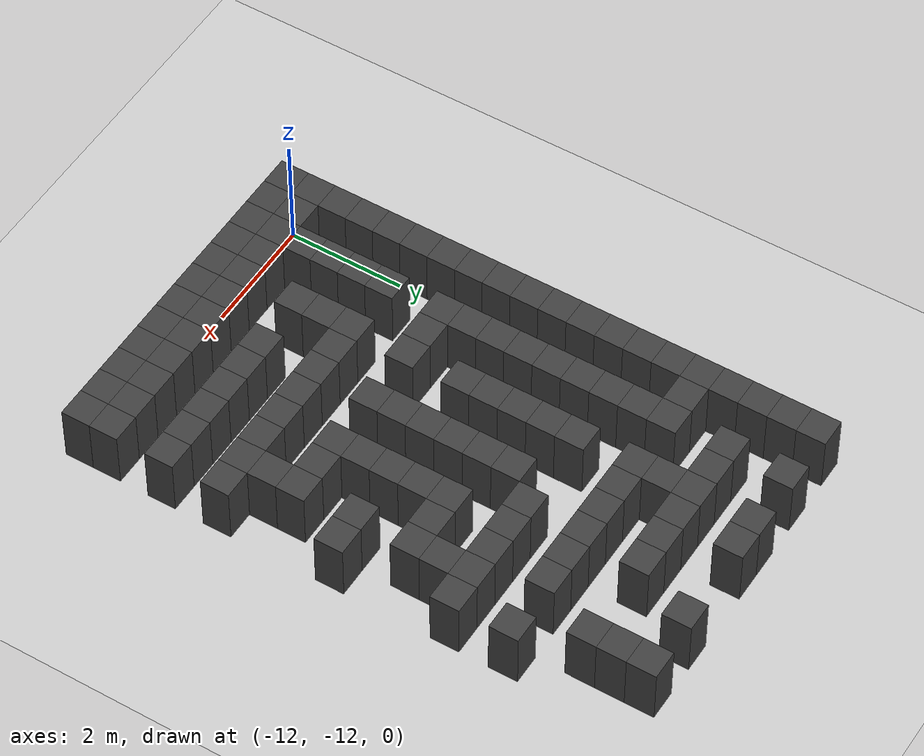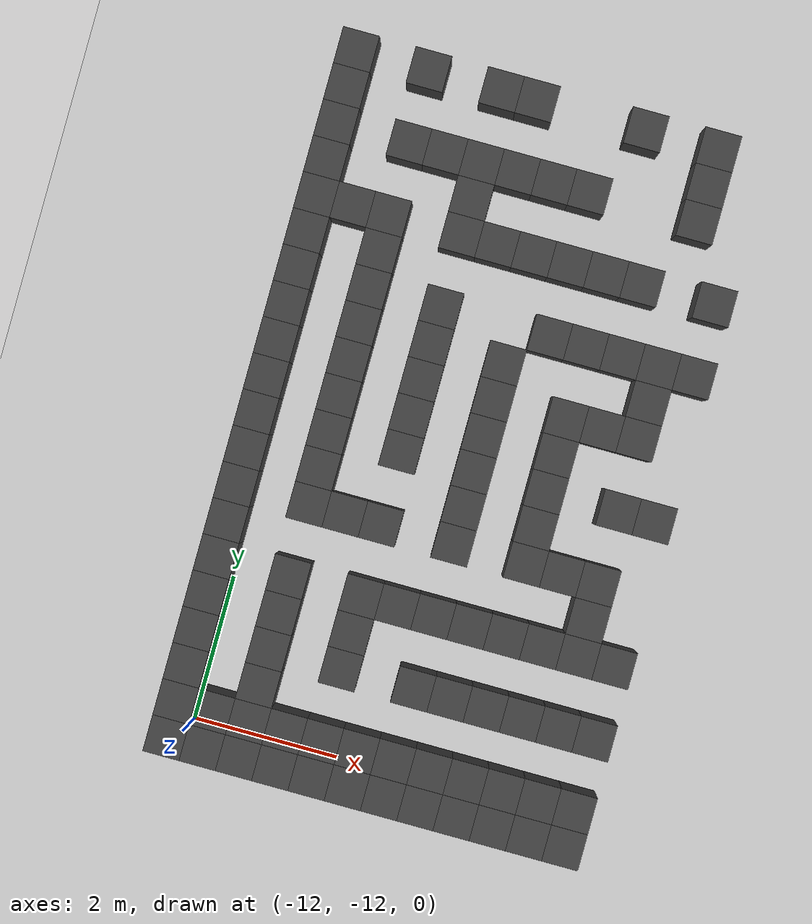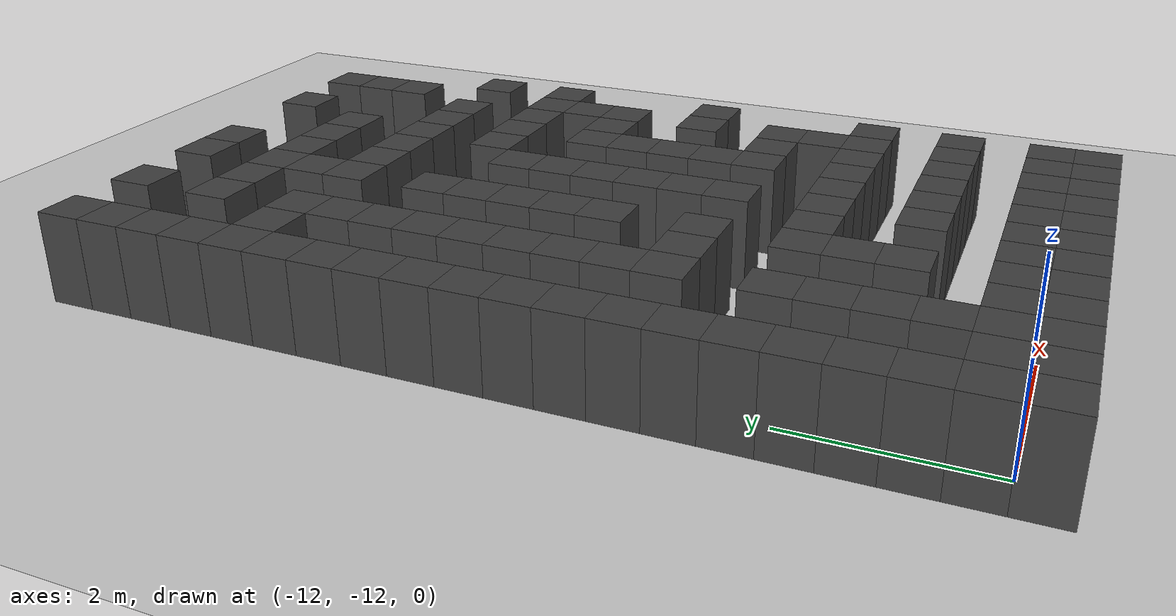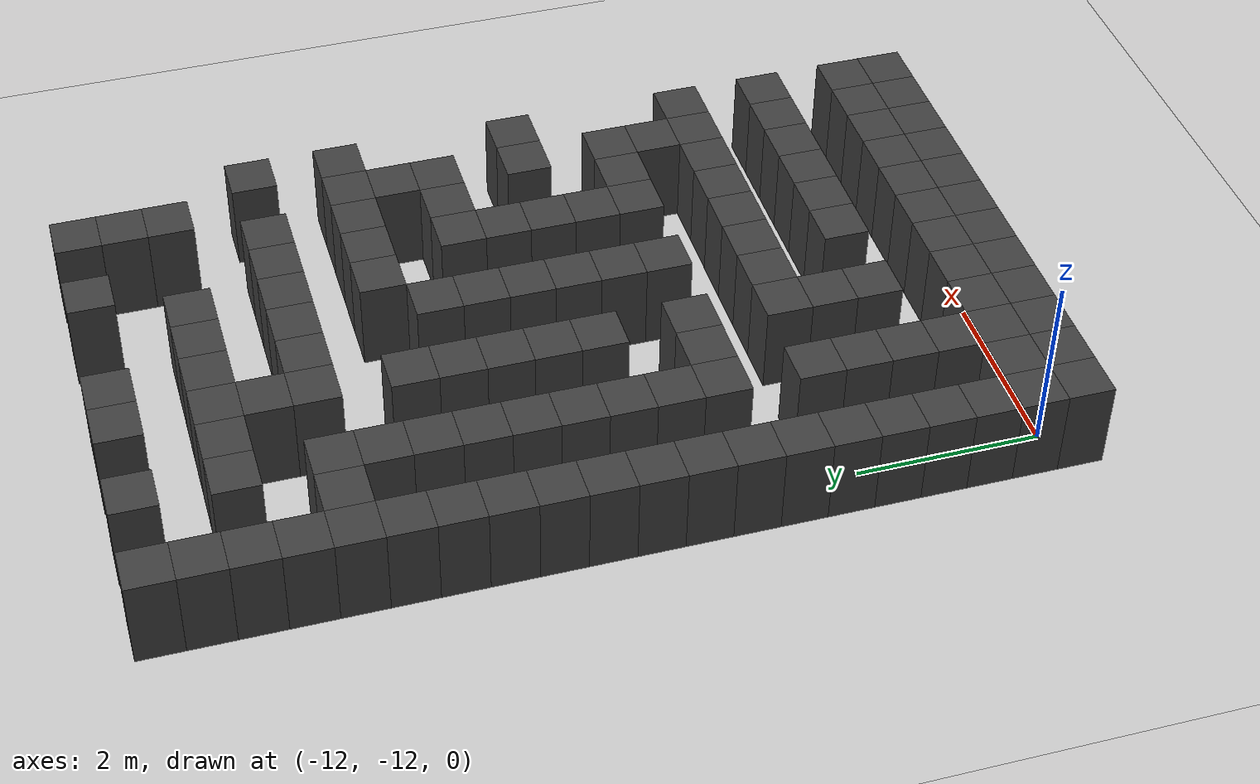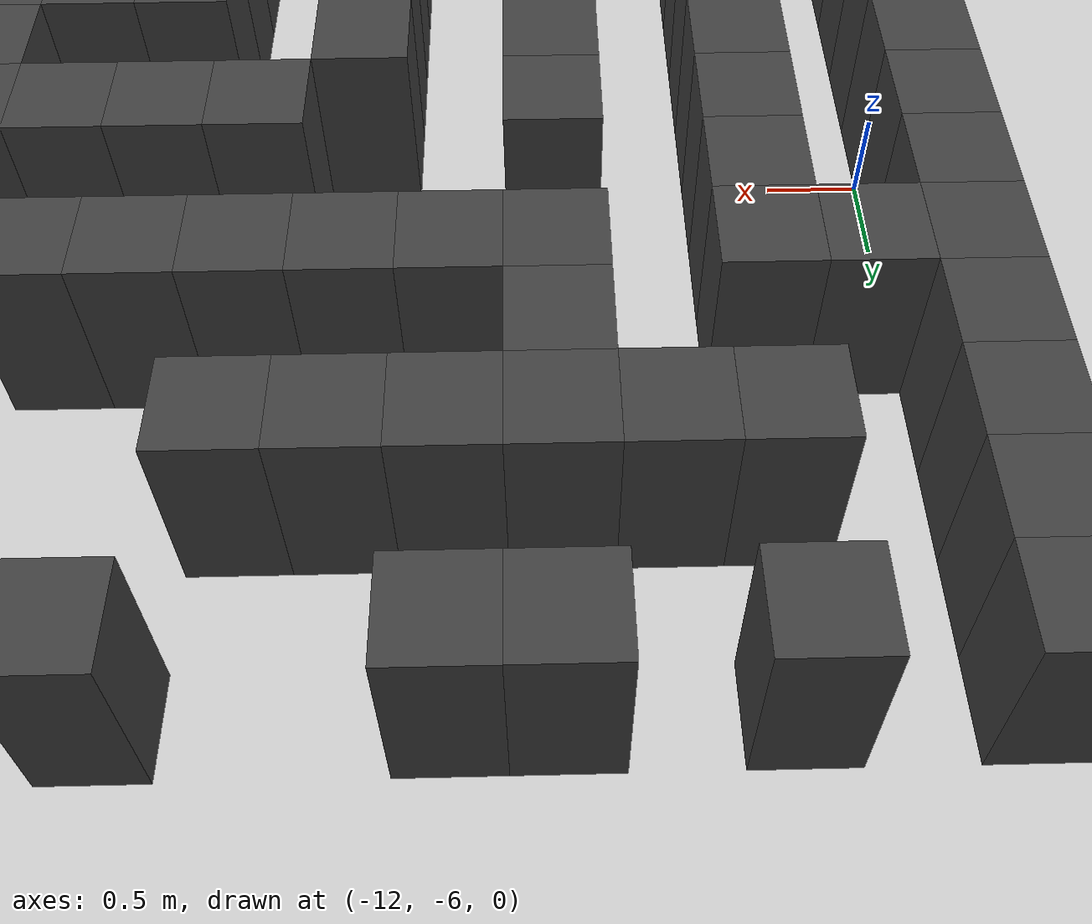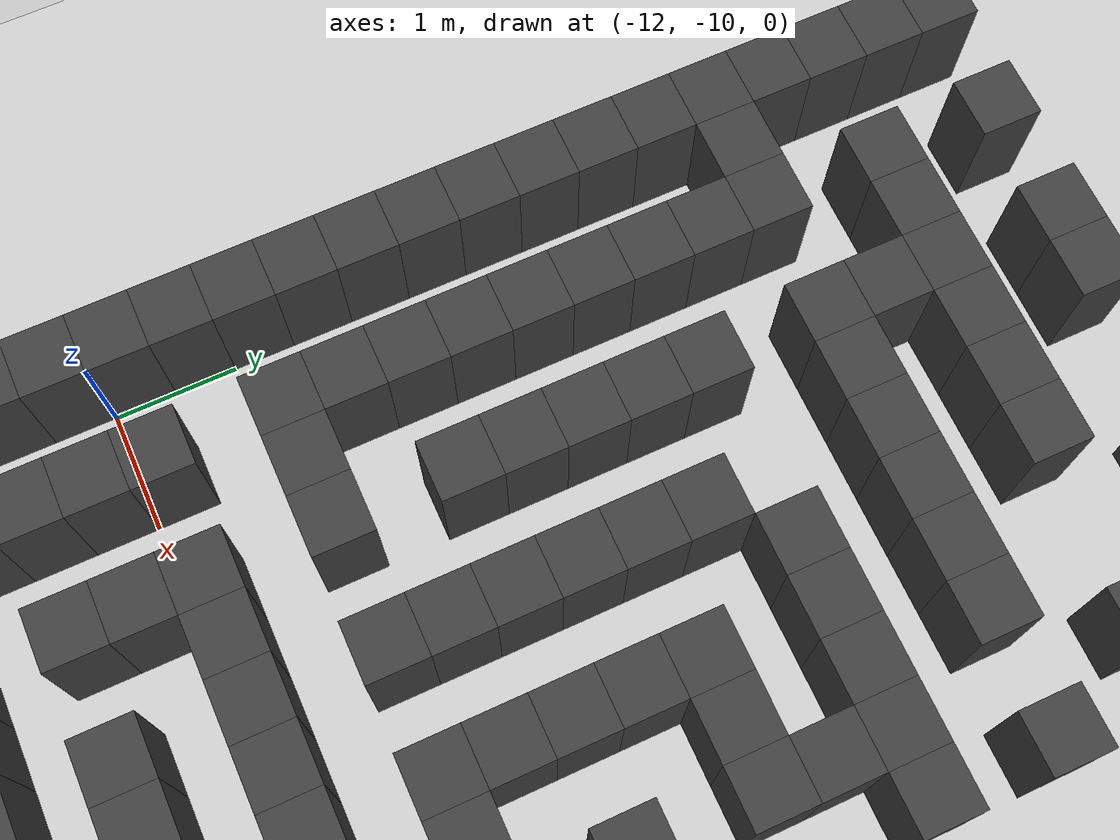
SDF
<sdf version="1.7">
 <world name="map_16783">
  <model name="ground_plane">
   <static>true</static>
   <link name="link">
    <collision name="collision">
     <geometry><plane><normal>0 0 1</normal><size>200 200</size></plane></geometry>
    </collision>
    <visual name="visual">
     <geometry><plane><normal>0 0 1</normal><size>200 200</size></plane></geometry>
     <material><ambient>0.8 0.8 0.8 1</ambient><diffuse>0.8 0.8 0.8 1</diffuse></material>
    </visual>
   </link>
  </model>
  <model name="maze_environment">
   <static>true</static>
   <link name="wall_725">
    <pose>-12.250 -2.750 0.500 0 0 0</pose>
    <collision name="col"><geometry><box><size>0.5 0.5 1.0</size></box></geometry></collision>
    <visual name="vis">
     <geometry><box><size>0.5 0.5 1.0</size></box></geometry>
     <material><ambient>0.15 0.15 0.15 1</ambient><diffuse>0.25 0.25 0.25 1</diffuse></material>
    </visual>
   </link>
   <link name="wall_726">
    <pose>-11.250 -2.750 0.500 0 0 0</pose>
    <collision name="col"><geometry><box><size>0.5 0.5 1.0</size></box></geometry></collision>
    <visual name="vis">
     <geometry><box><size>0.5 0.5 1.0</size></box></geometry>
     <material><ambient>0.15 0.15 0.15 1</ambient><diffuse>0.25 0.25 0.25 1</diffuse></material>
    </visual>
   </link>
   <link name="wall_727">
    <pose>-10.250 -2.750 0.500 0 0 0</pose>
    <collision name="col"><geometry><box><size>0.5 0.5 1.0</size></box></geometry></collision>
    <visual name="vis">
     <geometry><box><size>0.5 0.5 1.0</size></box></geometry>
     <material><ambient>0.15 0.15 0.15 1</ambient><diffuse>0.25 0.25 0.25 1</diffuse></material>
    </visual>
   </link>
   <link name="wall_728">
    <pose>-9.750 -2.750 0.500 0 0 0</pose>
    <collision name="col"><geometry><box><size>0.5 0.5 1.0</size></box></geometry></collision>
    <visual name="vis">
     <geometry><box><size>0.5 0.5 1.0</size></box></geometry>
     <material><ambient>0.15 0.15 0.15 1</ambient><diffuse>0.25 0.25 0.25 1</diffuse></material>
    </visual>
   </link>
   <link name="wall_729">
    <pose>-8.250 -2.750 0.500 0 0 0</pose>
    <collision name="col"><geometry><box><size>0.5 0.5 1.0</size></box></geometry></collision>
    <visual name="vis">
     <geometry><box><size>0.5 0.5 1.0</size></box></geometry>
     <material><ambient>0.15 0.15 0.15 1</ambient><diffuse>0.25 0.25 0.25 1</diffuse></material>
    </visual>
   </link>
   <link name="wall_730">
    <pose>-7.250 -2.750 0.500 0 0 0</pose>
    <collision name="col"><geometry><box><size>0.5 0.5 1.0</size></box></geometry></collision>
    <visual name="vis">
     <geometry><box><size>0.5 0.5 1.0</size></box></geometry>
     <material><ambient>0.15 0.15 0.15 1</ambient><diffuse>0.25 0.25 0.25 1</diffuse></material>
    </visual>
   </link>
   <link name="wall_756">
    <pose>-12.250 -3.250 0.500 0 0 0</pose>
    <collision name="col"><geometry><box><size>0.5 0.5 1.0</size></box></geometry></collision>
    <visual name="vis">
     <geometry><box><size>0.5 0.5 1.0</size></box></geometry>
     <material><ambient>0.15 0.15 0.15 1</ambient><diffuse>0.25 0.25 0.25 1</diffuse></material>
    </visual>
   </link>
   <link name="wall_757">
    <pose>-7.250 -3.250 0.500 0 0 0</pose>
    <collision name="col"><geometry><box><size>0.5 0.5 1.0</size></box></geometry></collision>
    <visual name="vis">
     <geometry><box><size>0.5 0.5 1.0</size></box></geometry>
     <material><ambient>0.15 0.15 0.15 1</ambient><diffuse>0.25 0.25 0.25 1</diffuse></material>
    </visual>
   </link>
   <link name="wall_769">
    <pose>-12.250 -3.750 0.500 0 0 0</pose>
    <collision name="col"><geometry><box><size>0.5 0.5 1.0</size></box></geometry></collision>
    <visual name="vis">
     <geometry><box><size>0.5 0.5 1.0</size></box></geometry>
     <material><ambient>0.15 0.15 0.15 1</ambient><diffuse>0.25 0.25 0.25 1</diffuse></material>
    </visual>
   </link>
   <link name="wall_770">
    <pose>-11.250 -3.750 0.500 0 0 0</pose>
    <collision name="col"><geometry><box><size>0.5 0.5 1.0</size></box></geometry></collision>
    <visual name="vis">
     <geometry><box><size>0.5 0.5 1.0</size></box></geometry>
     <material><ambient>0.15 0.15 0.15 1</ambient><diffuse>0.25 0.25 0.25 1</diffuse></material>
    </visual>
   </link>
   <link name="wall_771">
    <pose>-10.750 -3.750 0.500 0 0 0</pose>
    <collision name="col"><geometry><box><size>0.5 0.5 1.0</size></box></geometry></collision>
    <visual name="vis">
     <geometry><box><size>0.5 0.5 1.0</size></box></geometry>
     <material><ambient>0.15 0.15 0.15 1</ambient><diffuse>0.25 0.25 0.25 1</diffuse></material>
    </visual>
   </link>
   <link name="wall_772">
    <pose>-10.250 -3.750 0.500 0 0 0</pose>
    <collision name="col"><geometry><box><size>0.5 0.5 1.0</size></box></geometry></collision>
    <visual name="vis">
     <geometry><box><size>0.5 0.5 1.0</size></box></geometry>
     <material><ambient>0.15 0.15 0.15 1</ambient><diffuse>0.25 0.25 0.25 1</diffuse></material>
    </visual>
   </link>
   <link name="wall_773">
    <pose>-9.750 -3.750 0.500 0 0 0</pose>
    <collision name="col"><geometry><box><size>0.5 0.5 1.0</size></box></geometry></collision>
    <visual name="vis">
     <geometry><box><size>0.5 0.5 1.0</size></box></geometry>
     <material><ambient>0.15 0.15 0.15 1</ambient><diffuse>0.25 0.25 0.25 1</diffuse></material>
    </visual>
   </link>
   <link name="wall_774">
    <pose>-9.250 -3.750 0.500 0 0 0</pose>
    <collision name="col"><geometry><box><size>0.5 0.5 1.0</size></box></geometry></collision>
    <visual name="vis">
     <geometry><box><size>0.5 0.5 1.0</size></box></geometry>
     <material><ambient>0.15 0.15 0.15 1</ambient><diffuse>0.25 0.25 0.25 1</diffuse></material>
    </visual>
   </link>
   <link name="wall_775">
    <pose>-8.750 -3.750 0.500 0 0 0</pose>
    <collision name="col"><geometry><box><size>0.5 0.5 1.0</size></box></geometry></collision>
    <visual name="vis">
     <geometry><box><size>0.5 0.5 1.0</size></box></geometry>
     <material><ambient>0.15 0.15 0.15 1</ambient><diffuse>0.25 0.25 0.25 1</diffuse></material>
    </visual>
   </link>
   <link name="wall_776">
    <pose>-7.250 -3.750 0.500 0 0 0</pose>
    <collision name="col"><geometry><box><size>0.5 0.5 1.0</size></box></geometry></collision>
    <visual name="vis">
     <geometry><box><size>0.5 0.5 1.0</size></box></geometry>
     <material><ambient>0.15 0.15 0.15 1</ambient><diffuse>0.25 0.25 0.25 1</diffuse></material>
    </visual>
   </link>
   <link name="wall_803">
    <pose>-12.250 -4.250 0.500 0 0 0</pose>
    <collision name="col"><geometry><box><size>0.5 0.5 1.0</size></box></geometry></collision>
    <visual name="vis">
     <geometry><box><size>0.5 0.5 1.0</size></box></geometry>
     <material><ambient>0.15 0.15 0.15 1</ambient><diffuse>0.25 0.25 0.25 1</diffuse></material>
    </visual>
   </link>
   <link name="wall_804">
    <pose>-10.250 -4.250 0.500 0 0 0</pose>
    <collision name="col"><geometry><box><size>0.5 0.5 1.0</size></box></geometry></collision>
    <visual name="vis">
     <geometry><box><size>0.5 0.5 1.0</size></box></geometry>
     <material><ambient>0.15 0.15 0.15 1</ambient><diffuse>0.25 0.25 0.25 1</diffuse></material>
    </visual>
   </link>
   <link name="wall_815">
    <pose>-12.250 -4.750 0.500 0 0 0</pose>
    <collision name="col"><geometry><box><size>0.5 0.5 1.0</size></box></geometry></collision>
    <visual name="vis">
     <geometry><box><size>0.5 0.5 1.0</size></box></geometry>
     <material><ambient>0.15 0.15 0.15 1</ambient><diffuse>0.25 0.25 0.25 1</diffuse></material>
    </visual>
   </link>
   <link name="wall_816">
    <pose>-11.750 -4.750 0.500 0 0 0</pose>
    <collision name="col"><geometry><box><size>0.5 0.5 1.0</size></box></geometry></collision>
    <visual name="vis">
     <geometry><box><size>0.5 0.5 1.0</size></box></geometry>
     <material><ambient>0.15 0.15 0.15 1</ambient><diffuse>0.25 0.25 0.25 1</diffuse></material>
    </visual>
   </link>
   <link name="wall_817">
    <pose>-11.250 -4.750 0.500 0 0 0</pose>
    <collision name="col"><geometry><box><size>0.5 0.5 1.0</size></box></geometry></collision>
    <visual name="vis">
     <geometry><box><size>0.5 0.5 1.0</size></box></geometry>
     <material><ambient>0.15 0.15 0.15 1</ambient><diffuse>0.25 0.25 0.25 1</diffuse></material>
    </visual>
   </link>
   <link name="wall_818">
    <pose>-10.250 -4.750 0.500 0 0 0</pose>
    <collision name="col"><geometry><box><size>0.5 0.5 1.0</size></box></geometry></collision>
    <visual name="vis">
     <geometry><box><size>0.5 0.5 1.0</size></box></geometry>
     <material><ambient>0.15 0.15 0.15 1</ambient><diffuse>0.25 0.25 0.25 1</diffuse></material>
    </visual>
   </link>
   <link name="wall_819">
    <pose>-9.750 -4.750 0.500 0 0 0</pose>
    <collision name="col"><geometry><box><size>0.5 0.5 1.0</size></box></geometry></collision>
    <visual name="vis">
     <geometry><box><size>0.5 0.5 1.0</size></box></geometry>
     <material><ambient>0.15 0.15 0.15 1</ambient><diffuse>0.25 0.25 0.25 1</diffuse></material>
    </visual>
   </link>
   <link name="wall_820">
    <pose>-9.250 -4.750 0.500 0 0 0</pose>
    <collision name="col"><geometry><box><size>0.5 0.5 1.0</size></box></geometry></collision>
    <visual name="vis">
     <geometry><box><size>0.5 0.5 1.0</size></box></geometry>
     <material><ambient>0.15 0.15 0.15 1</ambient><diffuse>0.25 0.25 0.25 1</diffuse></material>
    </visual>
   </link>
   <link name="wall_821">
    <pose>-8.750 -4.750 0.500 0 0 0</pose>
    <collision name="col"><geometry><box><size>0.5 0.5 1.0</size></box></geometry></collision>
    <visual name="vis">
     <geometry><box><size>0.5 0.5 1.0</size></box></geometry>
     <material><ambient>0.15 0.15 0.15 1</ambient><diffuse>0.25 0.25 0.25 1</diffuse></material>
    </visual>
   </link>
   <link name="wall_822">
    <pose>-8.250 -4.750 0.500 0 0 0</pose>
    <collision name="col"><geometry><box><size>0.5 0.5 1.0</size></box></geometry></collision>
    <visual name="vis">
     <geometry><box><size>0.5 0.5 1.0</size></box></geometry>
     <material><ambient>0.15 0.15 0.15 1</ambient><diffuse>0.25 0.25 0.25 1</diffuse></material>
    </visual>
   </link>
   <link name="wall_823">
    <pose>-7.750 -4.750 0.500 0 0 0</pose>
    <collision name="col"><geometry><box><size>0.5 0.5 1.0</size></box></geometry></collision>
    <visual name="vis">
     <geometry><box><size>0.5 0.5 1.0</size></box></geometry>
     <material><ambient>0.15 0.15 0.15 1</ambient><diffuse>0.25 0.25 0.25 1</diffuse></material>
    </visual>
   </link>
   <link name="wall_824">
    <pose>-6.750 -4.750 0.500 0 0 0</pose>
    <collision name="col"><geometry><box><size>0.5 0.5 1.0</size></box></geometry></collision>
    <visual name="vis">
     <geometry><box><size>0.5 0.5 1.0</size></box></geometry>
     <material><ambient>0.15 0.15 0.15 1</ambient><diffuse>0.25 0.25 0.25 1</diffuse></material>
    </visual>
   </link>
   <link name="wall_851">
    <pose>-12.250 -5.250 0.500 0 0 0</pose>
    <collision name="col"><geometry><box><size>0.5 0.5 1.0</size></box></geometry></collision>
    <visual name="vis">
     <geometry><box><size>0.5 0.5 1.0</size></box></geometry>
     <material><ambient>0.15 0.15 0.15 1</ambient><diffuse>0.25 0.25 0.25 1</diffuse></material>
    </visual>
   </link>
   <link name="wall_852">
    <pose>-11.250 -5.250 0.500 0 0 0</pose>
    <collision name="col"><geometry><box><size>0.5 0.5 1.0</size></box></geometry></collision>
    <visual name="vis">
     <geometry><box><size>0.5 0.5 1.0</size></box></geometry>
     <material><ambient>0.15 0.15 0.15 1</ambient><diffuse>0.25 0.25 0.25 1</diffuse></material>
    </visual>
   </link>
   <link name="wall_865">
    <pose>-12.250 -5.750 0.500 0 0 0</pose>
    <collision name="col"><geometry><box><size>0.5 0.5 1.0</size></box></geometry></collision>
    <visual name="vis">
     <geometry><box><size>0.5 0.5 1.0</size></box></geometry>
     <material><ambient>0.15 0.15 0.15 1</ambient><diffuse>0.25 0.25 0.25 1</diffuse></material>
    </visual>
   </link>
   <link name="wall_866">
    <pose>-11.250 -5.750 0.500 0 0 0</pose>
    <collision name="col"><geometry><box><size>0.5 0.5 1.0</size></box></geometry></collision>
    <visual name="vis">
     <geometry><box><size>0.5 0.5 1.0</size></box></geometry>
     <material><ambient>0.15 0.15 0.15 1</ambient><diffuse>0.25 0.25 0.25 1</diffuse></material>
    </visual>
   </link>
   <link name="wall_867">
    <pose>-10.250 -5.750 0.500 0 0 0</pose>
    <collision name="col"><geometry><box><size>0.5 0.5 1.0</size></box></geometry></collision>
    <visual name="vis">
     <geometry><box><size>0.5 0.5 1.0</size></box></geometry>
     <material><ambient>0.15 0.15 0.15 1</ambient><diffuse>0.25 0.25 0.25 1</diffuse></material>
    </visual>
   </link>
   <link name="wall_868">
    <pose>-8.750 -5.750 0.500 0 0 0</pose>
    <collision name="col"><geometry><box><size>0.5 0.5 1.0</size></box></geometry></collision>
    <visual name="vis">
     <geometry><box><size>0.5 0.5 1.0</size></box></geometry>
     <material><ambient>0.15 0.15 0.15 1</ambient><diffuse>0.25 0.25 0.25 1</diffuse></material>
    </visual>
   </link>
   <link name="wall_869">
    <pose>-8.250 -5.750 0.500 0 0 0</pose>
    <collision name="col"><geometry><box><size>0.5 0.5 1.0</size></box></geometry></collision>
    <visual name="vis">
     <geometry><box><size>0.5 0.5 1.0</size></box></geometry>
     <material><ambient>0.15 0.15 0.15 1</ambient><diffuse>0.25 0.25 0.25 1</diffuse></material>
    </visual>
   </link>
   <link name="wall_870">
    <pose>-7.750 -5.750 0.500 0 0 0</pose>
    <collision name="col"><geometry><box><size>0.5 0.5 1.0</size></box></geometry></collision>
    <visual name="vis">
     <geometry><box><size>0.5 0.5 1.0</size></box></geometry>
     <material><ambient>0.15 0.15 0.15 1</ambient><diffuse>0.25 0.25 0.25 1</diffuse></material>
    </visual>
   </link>
   <link name="wall_871">
    <pose>-7.250 -5.750 0.500 0 0 0</pose>
    <collision name="col"><geometry><box><size>0.5 0.5 1.0</size></box></geometry></collision>
    <visual name="vis">
     <geometry><box><size>0.5 0.5 1.0</size></box></geometry>
     <material><ambient>0.15 0.15 0.15 1</ambient><diffuse>0.25 0.25 0.25 1</diffuse></material>
    </visual>
   </link>
   <link name="wall_872">
    <pose>-6.750 -5.750 0.500 0 0 0</pose>
    <collision name="col"><geometry><box><size>0.5 0.5 1.0</size></box></geometry></collision>
    <visual name="vis">
     <geometry><box><size>0.5 0.5 1.0</size></box></geometry>
     <material><ambient>0.15 0.15 0.15 1</ambient><diffuse>0.25 0.25 0.25 1</diffuse></material>
    </visual>
   </link>
   <link name="wall_898">
    <pose>-12.250 -6.250 0.500 0 0 0</pose>
    <collision name="col"><geometry><box><size>0.5 0.5 1.0</size></box></geometry></collision>
    <visual name="vis">
     <geometry><box><size>0.5 0.5 1.0</size></box></geometry>
     <material><ambient>0.15 0.15 0.15 1</ambient><diffuse>0.25 0.25 0.25 1</diffuse></material>
    </visual>
   </link>
   <link name="wall_899">
    <pose>-11.250 -6.250 0.500 0 0 0</pose>
    <collision name="col"><geometry><box><size>0.5 0.5 1.0</size></box></geometry></collision>
    <visual name="vis">
     <geometry><box><size>0.5 0.5 1.0</size></box></geometry>
     <material><ambient>0.15 0.15 0.15 1</ambient><diffuse>0.25 0.25 0.25 1</diffuse></material>
    </visual>
   </link>
   <link name="wall_900">
    <pose>-10.250 -6.250 0.500 0 0 0</pose>
    <collision name="col"><geometry><box><size>0.5 0.5 1.0</size></box></geometry></collision>
    <visual name="vis">
     <geometry><box><size>0.5 0.5 1.0</size></box></geometry>
     <material><ambient>0.15 0.15 0.15 1</ambient><diffuse>0.25 0.25 0.25 1</diffuse></material>
    </visual>
   </link>
   <link name="wall_901">
    <pose>-9.250 -6.250 0.500 0 0 0</pose>
    <collision name="col"><geometry><box><size>0.5 0.5 1.0</size></box></geometry></collision>
    <visual name="vis">
     <geometry><box><size>0.5 0.5 1.0</size></box></geometry>
     <material><ambient>0.15 0.15 0.15 1</ambient><diffuse>0.25 0.25 0.25 1</diffuse></material>
    </visual>
   </link>
   <link name="wall_902">
    <pose>-7.250 -6.250 0.500 0 0 0</pose>
    <collision name="col"><geometry><box><size>0.5 0.5 1.0</size></box></geometry></collision>
    <visual name="vis">
     <geometry><box><size>0.5 0.5 1.0</size></box></geometry>
     <material><ambient>0.15 0.15 0.15 1</ambient><diffuse>0.25 0.25 0.25 1</diffuse></material>
    </visual>
   </link>
   <link name="wall_913">
    <pose>-12.250 -6.750 0.500 0 0 0</pose>
    <collision name="col"><geometry><box><size>0.5 0.5 1.0</size></box></geometry></collision>
    <visual name="vis">
     <geometry><box><size>0.5 0.5 1.0</size></box></geometry>
     <material><ambient>0.15 0.15 0.15 1</ambient><diffuse>0.25 0.25 0.25 1</diffuse></material>
    </visual>
   </link>
   <link name="wall_914">
    <pose>-11.250 -6.750 0.500 0 0 0</pose>
    <collision name="col"><geometry><box><size>0.5 0.5 1.0</size></box></geometry></collision>
    <visual name="vis">
     <geometry><box><size>0.5 0.5 1.0</size></box></geometry>
     <material><ambient>0.15 0.15 0.15 1</ambient><diffuse>0.25 0.25 0.25 1</diffuse></material>
    </visual>
   </link>
   <link name="wall_915">
    <pose>-10.250 -6.750 0.500 0 0 0</pose>
    <collision name="col"><geometry><box><size>0.5 0.5 1.0</size></box></geometry></collision>
    <visual name="vis">
     <geometry><box><size>0.5 0.5 1.0</size></box></geometry>
     <material><ambient>0.15 0.15 0.15 1</ambient><diffuse>0.25 0.25 0.25 1</diffuse></material>
    </visual>
   </link>
   <link name="wall_916">
    <pose>-9.250 -6.750 0.500 0 0 0</pose>
    <collision name="col"><geometry><box><size>0.5 0.5 1.0</size></box></geometry></collision>
    <visual name="vis">
     <geometry><box><size>0.5 0.5 1.0</size></box></geometry>
     <material><ambient>0.15 0.15 0.15 1</ambient><diffuse>0.25 0.25 0.25 1</diffuse></material>
    </visual>
   </link>
   <link name="wall_917">
    <pose>-8.250 -6.750 0.500 0 0 0</pose>
    <collision name="col"><geometry><box><size>0.5 0.5 1.0</size></box></geometry></collision>
    <visual name="vis">
     <geometry><box><size>0.5 0.5 1.0</size></box></geometry>
     <material><ambient>0.15 0.15 0.15 1</ambient><diffuse>0.25 0.25 0.25 1</diffuse></material>
    </visual>
   </link>
   <link name="wall_918">
    <pose>-7.750 -6.750 0.500 0 0 0</pose>
    <collision name="col"><geometry><box><size>0.5 0.5 1.0</size></box></geometry></collision>
    <visual name="vis">
     <geometry><box><size>0.5 0.5 1.0</size></box></geometry>
     <material><ambient>0.15 0.15 0.15 1</ambient><diffuse>0.25 0.25 0.25 1</diffuse></material>
    </visual>
   </link>
   <link name="wall_919">
    <pose>-7.250 -6.750 0.500 0 0 0</pose>
    <collision name="col"><geometry><box><size>0.5 0.5 1.0</size></box></geometry></collision>
    <visual name="vis">
     <geometry><box><size>0.5 0.5 1.0</size></box></geometry>
     <material><ambient>0.15 0.15 0.15 1</ambient><diffuse>0.25 0.25 0.25 1</diffuse></material>
    </visual>
   </link>
   <link name="wall_947">
    <pose>-12.250 -7.250 0.500 0 0 0</pose>
    <collision name="col"><geometry><box><size>0.5 0.5 1.0</size></box></geometry></collision>
    <visual name="vis">
     <geometry><box><size>0.5 0.5 1.0</size></box></geometry>
     <material><ambient>0.15 0.15 0.15 1</ambient><diffuse>0.25 0.25 0.25 1</diffuse></material>
    </visual>
   </link>
   <link name="wall_948">
    <pose>-11.250 -7.250 0.500 0 0 0</pose>
    <collision name="col"><geometry><box><size>0.5 0.5 1.0</size></box></geometry></collision>
    <visual name="vis">
     <geometry><box><size>0.5 0.5 1.0</size></box></geometry>
     <material><ambient>0.15 0.15 0.15 1</ambient><diffuse>0.25 0.25 0.25 1</diffuse></material>
    </visual>
   </link>
   <link name="wall_949">
    <pose>-10.250 -7.250 0.500 0 0 0</pose>
    <collision name="col"><geometry><box><size>0.5 0.5 1.0</size></box></geometry></collision>
    <visual name="vis">
     <geometry><box><size>0.5 0.5 1.0</size></box></geometry>
     <material><ambient>0.15 0.15 0.15 1</ambient><diffuse>0.25 0.25 0.25 1</diffuse></material>
    </visual>
   </link>
   <link name="wall_950">
    <pose>-9.250 -7.250 0.500 0 0 0</pose>
    <collision name="col"><geometry><box><size>0.5 0.5 1.0</size></box></geometry></collision>
    <visual name="vis">
     <geometry><box><size>0.5 0.5 1.0</size></box></geometry>
     <material><ambient>0.15 0.15 0.15 1</ambient><diffuse>0.25 0.25 0.25 1</diffuse></material>
    </visual>
   </link>
   <link name="wall_951">
    <pose>-8.250 -7.250 0.500 0 0 0</pose>
    <collision name="col"><geometry><box><size>0.5 0.5 1.0</size></box></geometry></collision>
    <visual name="vis">
     <geometry><box><size>0.5 0.5 1.0</size></box></geometry>
     <material><ambient>0.15 0.15 0.15 1</ambient><diffuse>0.25 0.25 0.25 1</diffuse></material>
    </visual>
   </link>
   <link name="wall_962">
    <pose>-12.250 -7.750 0.500 0 0 0</pose>
    <collision name="col"><geometry><box><size>0.5 0.5 1.0</size></box></geometry></collision>
    <visual name="vis">
     <geometry><box><size>0.5 0.5 1.0</size></box></geometry>
     <material><ambient>0.15 0.15 0.15 1</ambient><diffuse>0.25 0.25 0.25 1</diffuse></material>
    </visual>
   </link>
   <link name="wall_963">
    <pose>-11.250 -7.750 0.500 0 0 0</pose>
    <collision name="col"><geometry><box><size>0.5 0.5 1.0</size></box></geometry></collision>
    <visual name="vis">
     <geometry><box><size>0.5 0.5 1.0</size></box></geometry>
     <material><ambient>0.15 0.15 0.15 1</ambient><diffuse>0.25 0.25 0.25 1</diffuse></material>
    </visual>
   </link>
   <link name="wall_964">
    <pose>-10.250 -7.750 0.500 0 0 0</pose>
    <collision name="col"><geometry><box><size>0.5 0.5 1.0</size></box></geometry></collision>
    <visual name="vis">
     <geometry><box><size>0.5 0.5 1.0</size></box></geometry>
     <material><ambient>0.15 0.15 0.15 1</ambient><diffuse>0.25 0.25 0.25 1</diffuse></material>
    </visual>
   </link>
   <link name="wall_965">
    <pose>-9.250 -7.750 0.500 0 0 0</pose>
    <collision name="col"><geometry><box><size>0.5 0.5 1.0</size></box></geometry></collision>
    <visual name="vis">
     <geometry><box><size>0.5 0.5 1.0</size></box></geometry>
     <material><ambient>0.15 0.15 0.15 1</ambient><diffuse>0.25 0.25 0.25 1</diffuse></material>
    </visual>
   </link>
   <link name="wall_966">
    <pose>-8.250 -7.750 0.500 0 0 0</pose>
    <collision name="col"><geometry><box><size>0.5 0.5 1.0</size></box></geometry></collision>
    <visual name="vis">
     <geometry><box><size>0.5 0.5 1.0</size></box></geometry>
     <material><ambient>0.15 0.15 0.15 1</ambient><diffuse>0.25 0.25 0.25 1</diffuse></material>
    </visual>
   </link>
   <link name="wall_967">
    <pose>-7.250 -7.750 0.500 0 0 0</pose>
    <collision name="col"><geometry><box><size>0.5 0.5 1.0</size></box></geometry></collision>
    <visual name="vis">
     <geometry><box><size>0.5 0.5 1.0</size></box></geometry>
     <material><ambient>0.15 0.15 0.15 1</ambient><diffuse>0.25 0.25 0.25 1</diffuse></material>
    </visual>
   </link>
   <link name="wall_968">
    <pose>-6.750 -7.750 0.500 0 0 0</pose>
    <collision name="col"><geometry><box><size>0.5 0.5 1.0</size></box></geometry></collision>
    <visual name="vis">
     <geometry><box><size>0.5 0.5 1.0</size></box></geometry>
     <material><ambient>0.15 0.15 0.15 1</ambient><diffuse>0.25 0.25 0.25 1</diffuse></material>
    </visual>
   </link>
   <link name="wall_993">
    <pose>-12.250 -8.250 0.500 0 0 0</pose>
    <collision name="col"><geometry><box><size>0.5 0.5 1.0</size></box></geometry></collision>
    <visual name="vis">
     <geometry><box><size>0.5 0.5 1.0</size></box></geometry>
     <material><ambient>0.15 0.15 0.15 1</ambient><diffuse>0.25 0.25 0.25 1</diffuse></material>
    </visual>
   </link>
   <link name="wall_994">
    <pose>-11.250 -8.250 0.500 0 0 0</pose>
    <collision name="col"><geometry><box><size>0.5 0.5 1.0</size></box></geometry></collision>
    <visual name="vis">
     <geometry><box><size>0.5 0.5 1.0</size></box></geometry>
     <material><ambient>0.15 0.15 0.15 1</ambient><diffuse>0.25 0.25 0.25 1</diffuse></material>
    </visual>
   </link>
   <link name="wall_995">
    <pose>-9.250 -8.250 0.500 0 0 0</pose>
    <collision name="col"><geometry><box><size>0.5 0.5 1.0</size></box></geometry></collision>
    <visual name="vis">
     <geometry><box><size>0.5 0.5 1.0</size></box></geometry>
     <material><ambient>0.15 0.15 0.15 1</ambient><diffuse>0.25 0.25 0.25 1</diffuse></material>
    </visual>
   </link>
   <link name="wall_996">
    <pose>-8.250 -8.250 0.500 0 0 0</pose>
    <collision name="col"><geometry><box><size>0.5 0.5 1.0</size></box></geometry></collision>
    <visual name="vis">
     <geometry><box><size>0.5 0.5 1.0</size></box></geometry>
     <material><ambient>0.15 0.15 0.15 1</ambient><diffuse>0.25 0.25 0.25 1</diffuse></material>
    </visual>
   </link>
   <link name="wall_1008">
    <pose>-12.250 -8.750 0.500 0 0 0</pose>
    <collision name="col"><geometry><box><size>0.5 0.5 1.0</size></box></geometry></collision>
    <visual name="vis">
     <geometry><box><size>0.5 0.5 1.0</size></box></geometry>
     <material><ambient>0.15 0.15 0.15 1</ambient><diffuse>0.25 0.25 0.25 1</diffuse></material>
    </visual>
   </link>
   <link name="wall_1009">
    <pose>-11.250 -8.750 0.500 0 0 0</pose>
    <collision name="col"><geometry><box><size>0.5 0.5 1.0</size></box></geometry></collision>
    <visual name="vis">
     <geometry><box><size>0.5 0.5 1.0</size></box></geometry>
     <material><ambient>0.15 0.15 0.15 1</ambient><diffuse>0.25 0.25 0.25 1</diffuse></material>
    </visual>
   </link>
   <link name="wall_1010">
    <pose>-10.750 -8.750 0.500 0 0 0</pose>
    <collision name="col"><geometry><box><size>0.5 0.5 1.0</size></box></geometry></collision>
    <visual name="vis">
     <geometry><box><size>0.5 0.5 1.0</size></box></geometry>
     <material><ambient>0.15 0.15 0.15 1</ambient><diffuse>0.25 0.25 0.25 1</diffuse></material>
    </visual>
   </link>
   <link name="wall_1011">
    <pose>-10.250 -8.750 0.500 0 0 0</pose>
    <collision name="col"><geometry><box><size>0.5 0.5 1.0</size></box></geometry></collision>
    <visual name="vis">
     <geometry><box><size>0.5 0.5 1.0</size></box></geometry>
     <material><ambient>0.15 0.15 0.15 1</ambient><diffuse>0.25 0.25 0.25 1</diffuse></material>
    </visual>
   </link>
   <link name="wall_1012">
    <pose>-9.250 -8.750 0.500 0 0 0</pose>
    <collision name="col"><geometry><box><size>0.5 0.5 1.0</size></box></geometry></collision>
    <visual name="vis">
     <geometry><box><size>0.5 0.5 1.0</size></box></geometry>
     <material><ambient>0.15 0.15 0.15 1</ambient><diffuse>0.25 0.25 0.25 1</diffuse></material>
    </visual>
   </link>
   <link name="wall_1013">
    <pose>-8.250 -8.750 0.500 0 0 0</pose>
    <collision name="col"><geometry><box><size>0.5 0.5 1.0</size></box></geometry></collision>
    <visual name="vis">
     <geometry><box><size>0.5 0.5 1.0</size></box></geometry>
     <material><ambient>0.15 0.15 0.15 1</ambient><diffuse>0.25 0.25 0.25 1</diffuse></material>
    </visual>
   </link>
   <link name="wall_1014">
    <pose>-7.750 -8.750 0.500 0 0 0</pose>
    <collision name="col"><geometry><box><size>0.5 0.5 1.0</size></box></geometry></collision>
    <visual name="vis">
     <geometry><box><size>0.5 0.5 1.0</size></box></geometry>
     <material><ambient>0.15 0.15 0.15 1</ambient><diffuse>0.25 0.25 0.25 1</diffuse></material>
    </visual>
   </link>
   <link name="wall_1015">
    <pose>-7.250 -8.750 0.500 0 0 0</pose>
    <collision name="col"><geometry><box><size>0.5 0.5 1.0</size></box></geometry></collision>
    <visual name="vis">
     <geometry><box><size>0.5 0.5 1.0</size></box></geometry>
     <material><ambient>0.15 0.15 0.15 1</ambient><diffuse>0.25 0.25 0.25 1</diffuse></material>
    </visual>
   </link>
   <link name="wall_1047">
    <pose>-12.250 -9.250 0.500 0 0 0</pose>
    <collision name="col"><geometry><box><size>0.5 0.5 1.0</size></box></geometry></collision>
    <visual name="vis">
     <geometry><box><size>0.5 0.5 1.0</size></box></geometry>
     <material><ambient>0.15 0.15 0.15 1</ambient><diffuse>0.25 0.25 0.25 1</diffuse></material>
    </visual>
   </link>
   <link name="wall_1048">
    <pose>-7.250 -9.250 0.500 0 0 0</pose>
    <collision name="col"><geometry><box><size>0.5 0.5 1.0</size></box></geometry></collision>
    <visual name="vis">
     <geometry><box><size>0.5 0.5 1.0</size></box></geometry>
     <material><ambient>0.15 0.15 0.15 1</ambient><diffuse>0.25 0.25 0.25 1</diffuse></material>
    </visual>
   </link>
   <link name="wall_1059">
    <pose>-12.250 -9.750 0.500 0 0 0</pose>
    <collision name="col"><geometry><box><size>0.5 0.5 1.0</size></box></geometry></collision>
    <visual name="vis">
     <geometry><box><size>0.5 0.5 1.0</size></box></geometry>
     <material><ambient>0.15 0.15 0.15 1</ambient><diffuse>0.25 0.25 0.25 1</diffuse></material>
    </visual>
   </link>
   <link name="wall_1060">
    <pose>-11.250 -9.750 0.500 0 0 0</pose>
    <collision name="col"><geometry><box><size>0.5 0.5 1.0</size></box></geometry></collision>
    <visual name="vis">
     <geometry><box><size>0.5 0.5 1.0</size></box></geometry>
     <material><ambient>0.15 0.15 0.15 1</ambient><diffuse>0.25 0.25 0.25 1</diffuse></material>
    </visual>
   </link>
   <link name="wall_1061">
    <pose>-10.250 -9.750 0.500 0 0 0</pose>
    <collision name="col"><geometry><box><size>0.5 0.5 1.0</size></box></geometry></collision>
    <visual name="vis">
     <geometry><box><size>0.5 0.5 1.0</size></box></geometry>
     <material><ambient>0.15 0.15 0.15 1</ambient><diffuse>0.25 0.25 0.25 1</diffuse></material>
    </visual>
   </link>
   <link name="wall_1062">
    <pose>-9.750 -9.750 0.500 0 0 0</pose>
    <collision name="col"><geometry><box><size>0.5 0.5 1.0</size></box></geometry></collision>
    <visual name="vis">
     <geometry><box><size>0.5 0.5 1.0</size></box></geometry>
     <material><ambient>0.15 0.15 0.15 1</ambient><diffuse>0.25 0.25 0.25 1</diffuse></material>
    </visual>
   </link>
   <link name="wall_1063">
    <pose>-9.250 -9.750 0.500 0 0 0</pose>
    <collision name="col"><geometry><box><size>0.5 0.5 1.0</size></box></geometry></collision>
    <visual name="vis">
     <geometry><box><size>0.5 0.5 1.0</size></box></geometry>
     <material><ambient>0.15 0.15 0.15 1</ambient><diffuse>0.25 0.25 0.25 1</diffuse></material>
    </visual>
   </link>
   <link name="wall_1064">
    <pose>-8.750 -9.750 0.500 0 0 0</pose>
    <collision name="col"><geometry><box><size>0.5 0.5 1.0</size></box></geometry></collision>
    <visual name="vis">
     <geometry><box><size>0.5 0.5 1.0</size></box></geometry>
     <material><ambient>0.15 0.15 0.15 1</ambient><diffuse>0.25 0.25 0.25 1</diffuse></material>
    </visual>
   </link>
   <link name="wall_1065">
    <pose>-8.250 -9.750 0.500 0 0 0</pose>
    <collision name="col"><geometry><box><size>0.5 0.5 1.0</size></box></geometry></collision>
    <visual name="vis">
     <geometry><box><size>0.5 0.5 1.0</size></box></geometry>
     <material><ambient>0.15 0.15 0.15 1</ambient><diffuse>0.25 0.25 0.25 1</diffuse></material>
    </visual>
   </link>
   <link name="wall_1066">
    <pose>-7.750 -9.750 0.500 0 0 0</pose>
    <collision name="col"><geometry><box><size>0.5 0.5 1.0</size></box></geometry></collision>
    <visual name="vis">
     <geometry><box><size>0.5 0.5 1.0</size></box></geometry>
     <material><ambient>0.15 0.15 0.15 1</ambient><diffuse>0.25 0.25 0.25 1</diffuse></material>
    </visual>
   </link>
   <link name="wall_1067">
    <pose>-7.250 -9.750 0.500 0 0 0</pose>
    <collision name="col"><geometry><box><size>0.5 0.5 1.0</size></box></geometry></collision>
    <visual name="vis">
     <geometry><box><size>0.5 0.5 1.0</size></box></geometry>
     <material><ambient>0.15 0.15 0.15 1</ambient><diffuse>0.25 0.25 0.25 1</diffuse></material>
    </visual>
   </link>
   <link name="wall_1068">
    <pose>-6.750 -9.750 0.500 0 0 0</pose>
    <collision name="col"><geometry><box><size>0.5 0.5 1.0</size></box></geometry></collision>
    <visual name="vis">
     <geometry><box><size>0.5 0.5 1.0</size></box></geometry>
     <material><ambient>0.15 0.15 0.15 1</ambient><diffuse>0.25 0.25 0.25 1</diffuse></material>
    </visual>
   </link>
   <link name="wall_1096">
    <pose>-12.250 -10.250 0.500 0 0 0</pose>
    <collision name="col"><geometry><box><size>0.5 0.5 1.0</size></box></geometry></collision>
    <visual name="vis">
     <geometry><box><size>0.5 0.5 1.0</size></box></geometry>
     <material><ambient>0.15 0.15 0.15 1</ambient><diffuse>0.25 0.25 0.25 1</diffuse></material>
    </visual>
   </link>
   <link name="wall_1097">
    <pose>-11.250 -10.250 0.500 0 0 0</pose>
    <collision name="col"><geometry><box><size>0.5 0.5 1.0</size></box></geometry></collision>
    <visual name="vis">
     <geometry><box><size>0.5 0.5 1.0</size></box></geometry>
     <material><ambient>0.15 0.15 0.15 1</ambient><diffuse>0.25 0.25 0.25 1</diffuse></material>
    </visual>
   </link>
   <link name="wall_1098">
    <pose>-10.250 -10.250 0.500 0 0 0</pose>
    <collision name="col"><geometry><box><size>0.5 0.5 1.0</size></box></geometry></collision>
    <visual name="vis">
     <geometry><box><size>0.5 0.5 1.0</size></box></geometry>
     <material><ambient>0.15 0.15 0.15 1</ambient><diffuse>0.25 0.25 0.25 1</diffuse></material>
    </visual>
   </link>
   <link name="wall_1110">
    <pose>-12.250 -10.750 0.500 0 0 0</pose>
    <collision name="col"><geometry><box><size>0.5 0.5 1.0</size></box></geometry></collision>
    <visual name="vis">
     <geometry><box><size>0.5 0.5 1.0</size></box></geometry>
     <material><ambient>0.15 0.15 0.15 1</ambient><diffuse>0.25 0.25 0.25 1</diffuse></material>
    </visual>
   </link>
   <link name="wall_1111">
    <pose>-11.250 -10.750 0.500 0 0 0</pose>
    <collision name="col"><geometry><box><size>0.5 0.5 1.0</size></box></geometry></collision>
    <visual name="vis">
     <geometry><box><size>0.5 0.5 1.0</size></box></geometry>
     <material><ambient>0.15 0.15 0.15 1</ambient><diffuse>0.25 0.25 0.25 1</diffuse></material>
    </visual>
   </link>
   <link name="wall_1112">
    <pose>-10.250 -10.750 0.500 0 0 0</pose>
    <collision name="col"><geometry><box><size>0.5 0.5 1.0</size></box></geometry></collision>
    <visual name="vis">
     <geometry><box><size>0.5 0.5 1.0</size></box></geometry>
     <material><ambient>0.15 0.15 0.15 1</ambient><diffuse>0.25 0.25 0.25 1</diffuse></material>
    </visual>
   </link>
   <link name="wall_1113">
    <pose>-9.250 -10.750 0.500 0 0 0</pose>
    <collision name="col"><geometry><box><size>0.5 0.5 1.0</size></box></geometry></collision>
    <visual name="vis">
     <geometry><box><size>0.5 0.5 1.0</size></box></geometry>
     <material><ambient>0.15 0.15 0.15 1</ambient><diffuse>0.25 0.25 0.25 1</diffuse></material>
    </visual>
   </link>
   <link name="wall_1114">
    <pose>-8.750 -10.750 0.500 0 0 0</pose>
    <collision name="col"><geometry><box><size>0.5 0.5 1.0</size></box></geometry></collision>
    <visual name="vis">
     <geometry><box><size>0.5 0.5 1.0</size></box></geometry>
     <material><ambient>0.15 0.15 0.15 1</ambient><diffuse>0.25 0.25 0.25 1</diffuse></material>
    </visual>
   </link>
   <link name="wall_1115">
    <pose>-8.250 -10.750 0.500 0 0 0</pose>
    <collision name="col"><geometry><box><size>0.5 0.5 1.0</size></box></geometry></collision>
    <visual name="vis">
     <geometry><box><size>0.5 0.5 1.0</size></box></geometry>
     <material><ambient>0.15 0.15 0.15 1</ambient><diffuse>0.25 0.25 0.25 1</diffuse></material>
    </visual>
   </link>
   <link name="wall_1116">
    <pose>-7.750 -10.750 0.500 0 0 0</pose>
    <collision name="col"><geometry><box><size>0.5 0.5 1.0</size></box></geometry></collision>
    <visual name="vis">
     <geometry><box><size>0.5 0.5 1.0</size></box></geometry>
     <material><ambient>0.15 0.15 0.15 1</ambient><diffuse>0.25 0.25 0.25 1</diffuse></material>
    </visual>
   </link>
   <link name="wall_1117">
    <pose>-7.250 -10.750 0.500 0 0 0</pose>
    <collision name="col"><geometry><box><size>0.5 0.5 1.0</size></box></geometry></collision>
    <visual name="vis">
     <geometry><box><size>0.5 0.5 1.0</size></box></geometry>
     <material><ambient>0.15 0.15 0.15 1</ambient><diffuse>0.25 0.25 0.25 1</diffuse></material>
    </visual>
   </link>
   <link name="wall_1118">
    <pose>-6.750 -10.750 0.500 0 0 0</pose>
    <collision name="col"><geometry><box><size>0.5 0.5 1.0</size></box></geometry></collision>
    <visual name="vis">
     <geometry><box><size>0.5 0.5 1.0</size></box></geometry>
     <material><ambient>0.15 0.15 0.15 1</ambient><diffuse>0.25 0.25 0.25 1</diffuse></material>
    </visual>
   </link>
   <link name="wall_1144">
    <pose>-12.250 -11.250 0.500 0 0 0</pose>
    <collision name="col"><geometry><box><size>0.5 0.5 1.0</size></box></geometry></collision>
    <visual name="vis">
     <geometry><box><size>0.5 0.5 1.0</size></box></geometry>
     <material><ambient>0.15 0.15 0.15 1</ambient><diffuse>0.25 0.25 0.25 1</diffuse></material>
    </visual>
   </link>
   <link name="wall_1145">
    <pose>-11.250 -11.250 0.500 0 0 0</pose>
    <collision name="col"><geometry><box><size>0.5 0.5 1.0</size></box></geometry></collision>
    <visual name="vis">
     <geometry><box><size>0.5 0.5 1.0</size></box></geometry>
     <material><ambient>0.15 0.15 0.15 1</ambient><diffuse>0.25 0.25 0.25 1</diffuse></material>
    </visual>
   </link>
   <link name="wall_1150">
    <pose>-12.250 -11.750 0.500 0 0 0</pose>
    <collision name="col"><geometry><box><size>0.5 0.5 1.0</size></box></geometry></collision>
    <visual name="vis">
     <geometry><box><size>0.5 0.5 1.0</size></box></geometry>
     <material><ambient>0.15 0.15 0.15 1</ambient><diffuse>0.25 0.25 0.25 1</diffuse></material>
    </visual>
   </link>
   <link name="wall_1151">
    <pose>-11.750 -11.750 0.500 0 0 0</pose>
    <collision name="col"><geometry><box><size>0.5 0.5 1.0</size></box></geometry></collision>
    <visual name="vis">
     <geometry><box><size>0.5 0.5 1.0</size></box></geometry>
     <material><ambient>0.15 0.15 0.15 1</ambient><diffuse>0.25 0.25 0.25 1</diffuse></material>
    </visual>
   </link>
   <link name="wall_1152">
    <pose>-11.250 -11.750 0.500 0 0 0</pose>
    <collision name="col"><geometry><box><size>0.5 0.5 1.0</size></box></geometry></collision>
    <visual name="vis">
     <geometry><box><size>0.5 0.5 1.0</size></box></geometry>
     <material><ambient>0.15 0.15 0.15 1</ambient><diffuse>0.25 0.25 0.25 1</diffuse></material>
    </visual>
   </link>
   <link name="wall_1153">
    <pose>-10.750 -11.750 0.500 0 0 0</pose>
    <collision name="col"><geometry><box><size>0.5 0.5 1.0</size></box></geometry></collision>
    <visual name="vis">
     <geometry><box><size>0.5 0.5 1.0</size></box></geometry>
     <material><ambient>0.15 0.15 0.15 1</ambient><diffuse>0.25 0.25 0.25 1</diffuse></material>
    </visual>
   </link>
   <link name="wall_1154">
    <pose>-10.250 -11.750 0.500 0 0 0</pose>
    <collision name="col"><geometry><box><size>0.5 0.5 1.0</size></box></geometry></collision>
    <visual name="vis">
     <geometry><box><size>0.5 0.5 1.0</size></box></geometry>
     <material><ambient>0.15 0.15 0.15 1</ambient><diffuse>0.25 0.25 0.25 1</diffuse></material>
    </visual>
   </link>
   <link name="wall_1155">
    <pose>-9.750 -11.750 0.500 0 0 0</pose>
    <collision name="col"><geometry><box><size>0.5 0.5 1.0</size></box></geometry></collision>
    <visual name="vis">
     <geometry><box><size>0.5 0.5 1.0</size></box></geometry>
     <material><ambient>0.15 0.15 0.15 1</ambient><diffuse>0.25 0.25 0.25 1</diffuse></material>
    </visual>
   </link>
   <link name="wall_1156">
    <pose>-9.250 -11.750 0.500 0 0 0</pose>
    <collision name="col"><geometry><box><size>0.5 0.5 1.0</size></box></geometry></collision>
    <visual name="vis">
     <geometry><box><size>0.5 0.5 1.0</size></box></geometry>
     <material><ambient>0.15 0.15 0.15 1</ambient><diffuse>0.25 0.25 0.25 1</diffuse></material>
    </visual>
   </link>
   <link name="wall_1157">
    <pose>-8.750 -11.750 0.500 0 0 0</pose>
    <collision name="col"><geometry><box><size>0.5 0.5 1.0</size></box></geometry></collision>
    <visual name="vis">
     <geometry><box><size>0.5 0.5 1.0</size></box></geometry>
     <material><ambient>0.15 0.15 0.15 1</ambient><diffuse>0.25 0.25 0.25 1</diffuse></material>
    </visual>
   </link>
   <link name="wall_1158">
    <pose>-8.250 -11.750 0.500 0 0 0</pose>
    <collision name="col"><geometry><box><size>0.5 0.5 1.0</size></box></geometry></collision>
    <visual name="vis">
     <geometry><box><size>0.5 0.5 1.0</size></box></geometry>
     <material><ambient>0.15 0.15 0.15 1</ambient><diffuse>0.25 0.25 0.25 1</diffuse></material>
    </visual>
   </link>
   <link name="wall_1159">
    <pose>-7.750 -11.750 0.500 0 0 0</pose>
    <collision name="col"><geometry><box><size>0.5 0.5 1.0</size></box></geometry></collision>
    <visual name="vis">
     <geometry><box><size>0.5 0.5 1.0</size></box></geometry>
     <material><ambient>0.15 0.15 0.15 1</ambient><diffuse>0.25 0.25 0.25 1</diffuse></material>
    </visual>
   </link>
   <link name="wall_1160">
    <pose>-7.250 -11.750 0.500 0 0 0</pose>
    <collision name="col"><geometry><box><size>0.5 0.5 1.0</size></box></geometry></collision>
    <visual name="vis">
     <geometry><box><size>0.5 0.5 1.0</size></box></geometry>
     <material><ambient>0.15 0.15 0.15 1</ambient><diffuse>0.25 0.25 0.25 1</diffuse></material>
    </visual>
   </link>
   <link name="wall_1161">
    <pose>-6.750 -11.750 0.500 0 0 0</pose>
    <collision name="col"><geometry><box><size>0.5 0.5 1.0</size></box></geometry></collision>
    <visual name="vis">
     <geometry><box><size>0.5 0.5 1.0</size></box></geometry>
     <material><ambient>0.15 0.15 0.15 1</ambient><diffuse>0.25 0.25 0.25 1</diffuse></material>
    </visual>
   </link>
   <link name="wall_1198">
    <pose>-12.250 -12.250 0.500 0 0 0</pose>
    <collision name="col"><geometry><box><size>0.5 0.5 1.0</size></box></geometry></collision>
    <visual name="vis">
     <geometry><box><size>0.5 0.5 1.0</size></box></geometry>
     <material><ambient>0.15 0.15 0.15 1</ambient><diffuse>0.25 0.25 0.25 1</diffuse></material>
    </visual>
   </link>
   <link name="wall_1199">
    <pose>-11.750 -12.250 0.500 0 0 0</pose>
    <collision name="col"><geometry><box><size>0.5 0.5 1.0</size></box></geometry></collision>
    <visual name="vis">
     <geometry><box><size>0.5 0.5 1.0</size></box></geometry>
     <material><ambient>0.15 0.15 0.15 1</ambient><diffuse>0.25 0.25 0.25 1</diffuse></material>
    </visual>
   </link>
   <link name="wall_1200">
    <pose>-11.250 -12.250 0.500 0 0 0</pose>
    <collision name="col"><geometry><box><size>0.5 0.5 1.0</size></box></geometry></collision>
    <visual name="vis">
     <geometry><box><size>0.5 0.5 1.0</size></box></geometry>
     <material><ambient>0.15 0.15 0.15 1</ambient><diffuse>0.25 0.25 0.25 1</diffuse></material>
    </visual>
   </link>
   <link name="wall_1201">
    <pose>-10.750 -12.250 0.500 0 0 0</pose>
    <collision name="col"><geometry><box><size>0.5 0.5 1.0</size></box></geometry></collision>
    <visual name="vis">
     <geometry><box><size>0.5 0.5 1.0</size></box></geometry>
     <material><ambient>0.15 0.15 0.15 1</ambient><diffuse>0.25 0.25 0.25 1</diffuse></material>
    </visual>
   </link>
   <link name="wall_1202">
    <pose>-10.250 -12.250 0.500 0 0 0</pose>
    <collision name="col"><geometry><box><size>0.5 0.5 1.0</size></box></geometry></collision>
    <visual name="vis">
     <geometry><box><size>0.5 0.5 1.0</size></box></geometry>
     <material><ambient>0.15 0.15 0.15 1</ambient><diffuse>0.25 0.25 0.25 1</diffuse></material>
    </visual>
   </link>
   <link name="wall_1203">
    <pose>-9.750 -12.250 0.500 0 0 0</pose>
    <collision name="col"><geometry><box><size>0.5 0.5 1.0</size></box></geometry></collision>
    <visual name="vis">
     <geometry><box><size>0.5 0.5 1.0</size></box></geometry>
     <material><ambient>0.15 0.15 0.15 1</ambient><diffuse>0.25 0.25 0.25 1</diffuse></material>
    </visual>
   </link>
   <link name="wall_1204">
    <pose>-9.250 -12.250 0.500 0 0 0</pose>
    <collision name="col"><geometry><box><size>0.5 0.5 1.0</size></box></geometry></collision>
    <visual name="vis">
     <geometry><box><size>0.5 0.5 1.0</size></box></geometry>
     <material><ambient>0.15 0.15 0.15 1</ambient><diffuse>0.25 0.25 0.25 1</diffuse></material>
    </visual>
   </link>
   <link name="wall_1205">
    <pose>-8.750 -12.250 0.500 0 0 0</pose>
    <collision name="col"><geometry><box><size>0.5 0.5 1.0</size></box></geometry></collision>
    <visual name="vis">
     <geometry><box><size>0.5 0.5 1.0</size></box></geometry>
     <material><ambient>0.15 0.15 0.15 1</ambient><diffuse>0.25 0.25 0.25 1</diffuse></material>
    </visual>
   </link>
   <link name="wall_1206">
    <pose>-8.250 -12.250 0.500 0 0 0</pose>
    <collision name="col"><geometry><box><size>0.5 0.5 1.0</size></box></geometry></collision>
    <visual name="vis">
     <geometry><box><size>0.5 0.5 1.0</size></box></geometry>
     <material><ambient>0.15 0.15 0.15 1</ambient><diffuse>0.25 0.25 0.25 1</diffuse></material>
    </visual>
   </link>
   <link name="wall_1207">
    <pose>-7.750 -12.250 0.500 0 0 0</pose>
    <collision name="col"><geometry><box><size>0.5 0.5 1.0</size></box></geometry></collision>
    <visual name="vis">
     <geometry><box><size>0.5 0.5 1.0</size></box></geometry>
     <material><ambient>0.15 0.15 0.15 1</ambient><diffuse>0.25 0.25 0.25 1</diffuse></material>
    </visual>
   </link>
   <link name="wall_1208">
    <pose>-7.250 -12.250 0.500 0 0 0</pose>
    <collision name="col"><geometry><box><size>0.5 0.5 1.0</size></box></geometry></collision>
    <visual name="vis">
     <geometry><box><size>0.5 0.5 1.0</size></box></geometry>
     <material><ambient>0.15 0.15 0.15 1</ambient><diffuse>0.25 0.25 0.25 1</diffuse></material>
    </visual>
   </link>
   <link name="wall_1209">
    <pose>-6.750 -12.250 0.500 0 0 0</pose>
    <collision name="col"><geometry><box><size>0.5 0.5 1.0</size></box></geometry></collision>
    <visual name="vis">
     <geometry><box><size>0.5 0.5 1.0</size></box></geometry>
     <material><ambient>0.15 0.15 0.15 1</ambient><diffuse>0.25 0.25 0.25 1</diffuse></material>
    </visual>
   </link>
  </model>
 </world>
</sdf>
